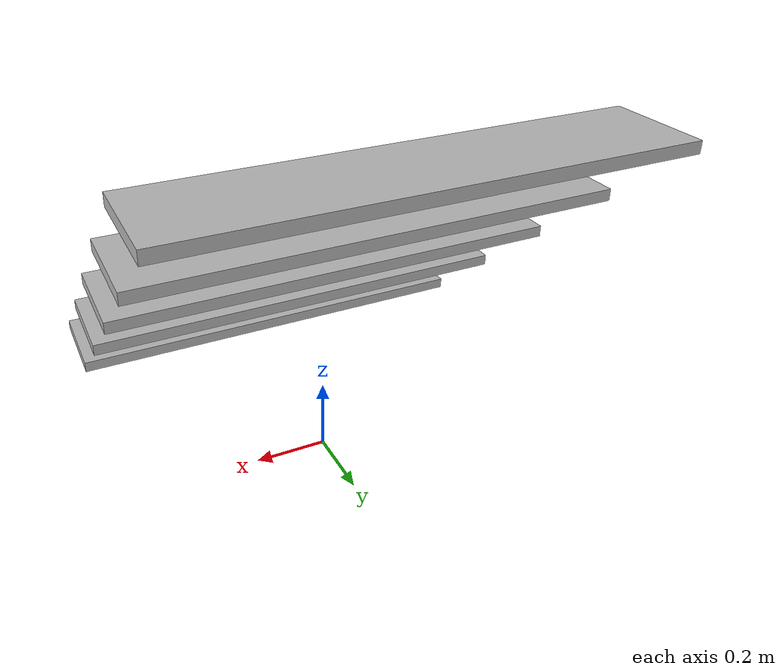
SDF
<?xml version="1.0" ?>
<sdf version="1.5">
  <model name="nist_stairs_120">
    <static>true</static>
    <link name="nist_stairs_120_link">
      <pose>0 0 0.0 0 0 0</pose>
      <collision name="collision">
        <geometry>
          <mesh>
            <uri>model://nist_stairs_120/meshes/nist_stairs_120.dae</uri>
            <scale>1 1 1</scale>
          </mesh>
        </geometry>
      </collision>
      <visual name="visual">
        <geometry>
          <mesh>
            <uri>model://nist_stairs_120/meshes/nist_stairs_120.dae</uri>
            <scale>1 1 1</scale>
          </mesh>
        </geometry>
      </visual>
    </link>
  </model>
</sdf>
